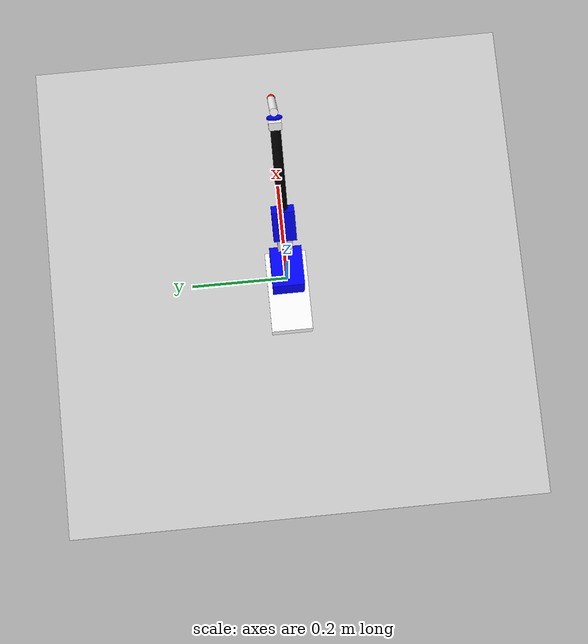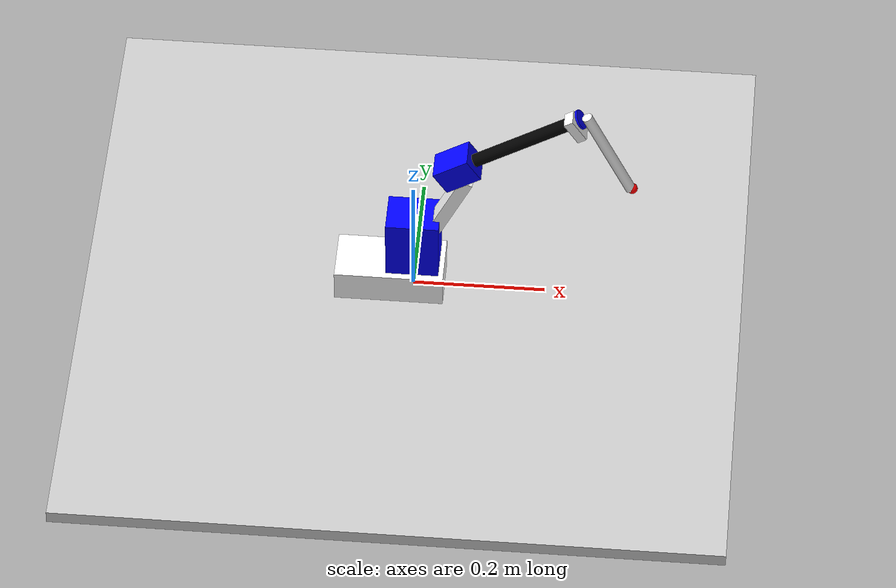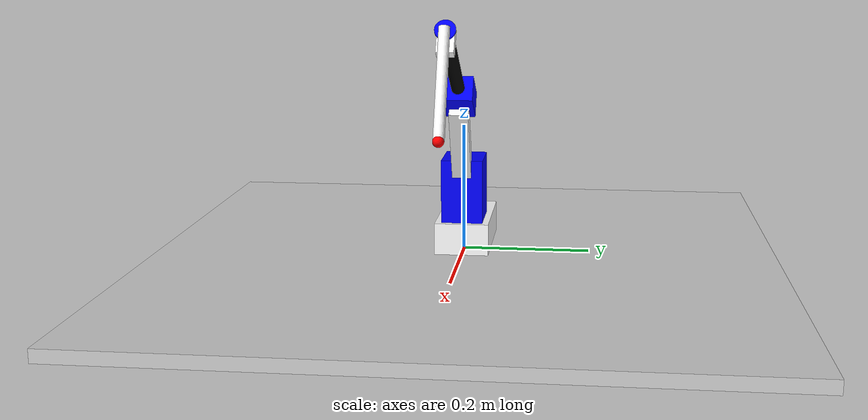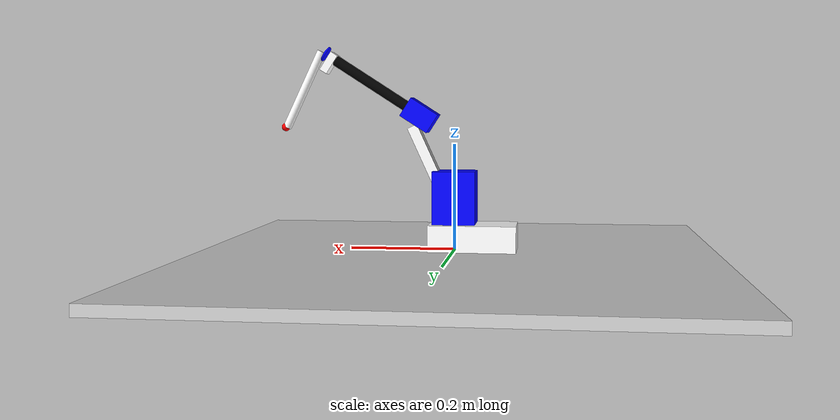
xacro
<?xml version="1.0" ?>
<!-- |    This document was autogenerated by xacro from /home/qiqi/test1/src/marm_description/urdf/arm.xacro | -->
<!-- |    EDITING THIS FILE BY HAND IS NOT RECOMMENDED                                 | -->
<robot name="arm">
    //定义一系列颜色
    <!-- Defining the colors used in this robot -->
    <material name="Black">
        <color rgba="0 0 0 1" />
    </material>
    <material name="White">
        <color rgba="1 1 1 1" />
    </material>
    <material name="Blue">
        <color rgba="0 0 1 1" />
    </material>
    <material name="Red">
        <color rgba="1 0 0 1" />
    </material>
    <!-- ///////////////////////////////////////   world  ////////////////////////////////////////// -->
    <link name="world" />
    <joint name="world_joint" type="fixed">
        <parent link="world" />
        <child link="base_link" />
        <origin rpy="0 0 0" xyz="0 0 0" />
    </joint>
    <!-- ///////////////////////////////////////   bottom_joint   ////////////////////////////////////////// -->
    <joint name="bottom_joint" type="fixed">
        <origin rpy="0 0 0" xyz="0 0 0" />
        <parent link="base_link" />
        <child link="bottom_link" />
    </joint>
    <link name="bottom_link">
        // 可视化
        <visual>
            <origin rpy="0 0 0" xyz=" 0 0 -0.02" />
            <geometry>
                <box size="1 1 0.02" />
            </geometry>
            <material name="silver">
                <color rgba=".8 .8 .8 1" />
            </material>
        </visual>
        // 碰撞属性
        <collision>
            <origin rpy="0 0 0" xyz=" 0 0 -0.02" />
            <geometry>
                <box size="1 1 0.02" />
            </geometry>
        </collision>
        <inertial>
            <origin rpy="0 0 0" xyz="0 0 0" />
            <mass value="500" />
            <inertia ixx="0.1" ixy="0" ixz="0" iyy="0.1" iyz="0" izz="0.1" />
        </inertial>
    </link>
    <!-- /////////////////////////////////////   BASE LINK    ////////////////////////////////////////////// -->
    <link name="base_link">
        <visual>
            <origin rpy="0 0 0" xyz="-0.035 0 0.025" />
            <geometry>
                <box size="0.165 0.085 0.05" />
            </geometry>
            <material name="White" />
        </visual>
        <inertial>
            <origin rpy="0 0 0" xyz="0 0 0.5" />
            <mass value="0.1" />
            <inertia ixx="0.1" ixy="0" ixz="0" iyy="0.1" iyz="0" izz="0.1" />
        </inertial>
        <collision>
            <origin rpy="0 0 0" xyz="-0.035 0 0.025" />
            <geometry>
                <box size="0.165 0.085 0.05" />
            </geometry>
        </collision>
    </link>
    <joint name="joint1" type="revolute">
        <parent link="base_link" />
        <child link="link1" />
        <origin rpy="0 0 0" xyz="0 0 0.05" />
        <axis xyz="0 0 1" />
        <limit effort="100" lower="-1.57" upper="1.57" velocity="100.0" />
        <dynamics damping="0.01" friction="0.0" />
    </joint>
    <!-- /////////////////////////////////////   LINK1  ////////////////////////////////////////////// -->
    <link name="link1">
        <visual>
            <origin rpy="0 0 0" xyz="0 0 0.05" />
            <geometry>
                <box size="0.08 0.065 0.1" />
            </geometry>
            <material name="Blue" />
        </visual>
        <inertial>
            <origin rpy="0 0 0" xyz="0 0 0" />
            <mass value="0.1" />
            <inertia ixx="0.1" ixy="0" ixz="0" iyy="0.1" iyz="0" izz="0.1" />
        </inertial>
        <collision>
            <origin rpy="0 0 0" xyz="0 0 0.05" />
            <geometry>
                <box size="0.08 0.065 0.1" />
            </geometry>
        </collision>
    </link>
    <joint name="joint2" type="revolute">
        <parent link="link1" />
        <child link="link2" />
        <origin rpy="0 2 0" xyz="0.03 0 0.075" />
        <axis xyz="0 -1 0" />
        <limit effort="100" lower="-1.57" upper="1.57" velocity="100.0" />
        <dynamics damping="0.01" friction="-1.0" />
    </joint>
    <!-- ///////////////////////////////////////   LINK2  ////////////////////////////////////////////// -->
    <link name="link2">
        <visual>
            <origin rpy="0 0 0" xyz="-0.06 0 0" />
            <geometry>
                <box size="0.12 0.03 0.02" />
            </geometry>
            <material name="White" />
        </visual>
        <inertial>
            <origin rpy="0 0 0" xyz="0 0 0" />
            <mass value="0.1" />
            <inertia ixx="0.1" ixy="0" ixz="0" iyy="0.1" iyz="0" izz="0.1" />
        </inertial>
        <collision>
            <origin rpy="0 0 0" xyz="-0.06 0 0" />
            <geometry>
                <box size="0.12 0.03 0.02" />
            </geometry>
        </collision>
    </link>
    <joint name="joint2m" type="revolute">
        <parent link="link2" />
        <child link="link2m" />
        <origin rpy="0 0 0" xyz="-0.12 0 0" />
        <axis xyz="0 -1 0" />
        <limit effort="100" lower="-1.57" upper="1.57" velocity="100.0" />
        <mimic joint="joint2" multiplier="-1" />
    </joint>
    <!-- /////////////////////////////////   LINK2m///////////////////////////////////////////////////// -->
    <link name="link2m">
        <interial>
            <origin rpy="0 0 0" xyz="0 0 0" />
            <mass value="0.1" />
            <interia ixx="0.1" ixy="0" ixz="0" iyy="0.1" iyz="0" izz="0.1" />
        </interial>
    </link>
    <joint name="joint3" type="revolute">
        <parent link="link2m" />
        <child link="link3" />
        <origin rpy="0 -1 0" xyz="0 0 0" />
        <axis xyz="0 1 0" />
        <limit effort="100" lower="-1.57" upper="1.57" velocity="100.0" />
        <dynamics damping="0.01" friction="0.0" />
    </joint>
    <!-- /////////////////////////////////   LINK3  ///////////////////////////////////////////////////// -->
    <link name="link3">
        <visual>
            <origin rpy="0 0 0" xyz="-0.025 0 0" />
            <geometry>
                <box size="0.04 0.045 0.06" />
            </geometry>
            <material name="Blue" />
        </visual>
        <inertial>
            <origin rpy="0 0 0" xyz="0.145 0 0" />
            <mass value="0.1" />
            <inertia ixx="0.1" ixy="0" ixz="0" iyy="0.1" iyz="0" izz="0.1" />
        </inertial>
        <collision>
            <origin rpy="0 0 0" xyz="-0.025 0 0" />
            <geometry>
                <box size="0.04 0.045 0.06" />
            </geometry>
        </collision>
    </link>
    <joint name="joint4" type="revolute">
        <parent link="link3" />
        <child link="link4" />
        <origin rpy="0 0 0" xyz="-0.025 0 0" />
        <axis xyz="0 0 1" />
        <limit effort="100" lower="-1.57" upper="1.57" velocity="100.0" />
        <dynamics damping="0.01" friction="0.0" />
    </joint>
    <!-- ///////////////////////////////////   LINK4  //////////////////////////////////////////////// -->
    <link name="link4">
        <visual>
            <origin rpy="0 0 0" xyz="0 0 0.1" />
            <geometry>
                <cylinder length="0.2" radius="0.01" />
            </geometry>
            <material name="Black" />
        </visual>
        <collision>
            <origin rpy="0 0 0" xyz="0 0 0.1" />
            <geometry>
                <cylinder length="0.2" radius="0.01" />
            </geometry>
        </collision>
        <inertial>
            <origin rpy="0 0 0" xyz="0 0 0" />
            <mass value="0.1" />
            <inertia ixx="0.1" ixy="0" ixz="0" iyy="0.1" iyz="0" izz="0.1" />
        </inertial>
    </link>
    <joint name="joint5" type="revolute">
        <parent link="link4" />
        <child link="link5" />
        <axis xyz="0 1 0" />
        <origin rpy="0 0 0" xyz="0 0 0.2" />
        <dynamics damping="0.01" friction="0.0" />
        <limit effort="100" lower="-1.57" upper="1.57" velocity="100.0" />
    </joint>
    <!-- //////////////////////////////////   LINK5  ///////////////////////////////////////////////// -->
    <link name="link5">
        <visual>
            <origin rpy="0 0 0" xyz="0.01 0 0" />
            <geometry>
                <box size="0.04 0.025 0.015" />
            </geometry>
            <material name="White" />
        </visual>
        <collision>
            <origin rpy="0 0 0" xyz="0.01 0 0" />
            <geometry>
                <box size="0.04 0.025 0.015" />
            </geometry>
        </collision>
        <inertial>
            <origin rpy="0 0 0" xyz="0 0 0.5" />
            <mass value="0.1" />
            <inertia ixx="0.1" ixy="0" ixz="0" iyy="0.1" iyz="0" izz="0.1" />
        </inertial>
    </link>
    <joint name="joint6" type="revolute">
        <parent link="link5" />
        <child link="link6" />
        <axis xyz="0 0 1" />
        <origin rpy="0 0 0" xyz="0 0 0.015" />
        <dynamics damping="0.01" friction="0.0" />
        <limit effort="100" lower="-1.57" upper="1.57" velocity="100.0" />
    </joint>
    <!-- ////////////////////////////////   LINK6  ///////////////////////////////////////////////// -->
    <link name="link6">
        <visual>
            <origin rpy="0 0 0" xyz="0 0 0" />
            <geometry>
                <cylinder length="0.003" radius="0.015" />
            </geometry>
            <material name="Blue" />
        </visual>
        <collision>
            <origin rpy="0 0 0" xyz="0 0 0" />
            <geometry>
                <cylinder length="0.003" radius="0.015" />
            </geometry>
        </collision>
        <inertial>
            <origin rpy="0 0 0" xyz="0 0 0.5" />
            <mass value="0.1" />
            <inertia ixx="0.1" ixy="0" ixz="0" iyy="0.1" iyz="0" izz="0.1" />
        </inertial>
    </link>
    <joint name="pen_joint" type="fixed">
        <parent link="link6" />
        <child link="pen" />
    </joint>
    <!-- //////////////////////////////////////   pen   ////////////////////////////////////////////// -->
    <link name="pen">
        <visual>
            <origin rpy="0 1.7 0" xyz="0.08 0 0" />
            <geometry>
                <cylinder length="0.16" radius="0.008" />
            </geometry>
            <material name="White" />
        </visual>
        <inertial>
            <origin rpy="0 1.7 0" xyz="0.08 0 0" />
            <mass value="0.1" />
            <inertia ixx="0.1" ixy="0" ixz="0" iyy="0.1" iyz="0" izz="0.1" />
        </inertial>
        <collision>
            <origin rpy="0 1.7 0" xyz="0.08 0 0" />
            <geometry>
                <cylinder length="0.16" radius="0.008" />
            </geometry>
        </collision>
    </link>
    <!-- //////////////////////////////////////   pen_tip  ////////////////////////////////////////////// -->
    <link name="pen_tip">
        <visual>
            <origin rpy="0 0 0" xyz="0 0 0" />
            <geometry>
                <sphere radius="0.008" />
            </geometry>
            <material name="Red" />
        </visual>
        <collision>
            <origin rpy="0 0 0" xyz="0 0 0" />
            <geometry>
                <sphere radius="0.008" />
            </geometry>
        </collision>
        <inertial>
            <origin rpy="0 0 0" xyz="0 0 0" />
            <mass value="0.1" />
            <inertia ixx="0.1" ixy="0" ixz="0" iyy="0.1" iyz="0" izz="0.1" />
        </inertial>
    </link>
    <joint name="pen_tip_joint" type="fixed">
        <parent link="pen" />
        <child link="pen_tip" />
        <origin rpy="0 0 0" xyz="0.16 0 -0.008" />
    </joint>
    <!-- /////////////////////////////////   Gazebo   ////////////////////////////////////// -->
    <gazebo reference="bottom_link">
        <material>Gazebo/White</material>
        <plugin name="gazebo_ros_control">
            <robotNamespace>/</robotNamespace>
        </plugin>
    </gazebo>
    <gazebo reference="base_link">
        <material>Gazebo/White</material>
    </gazebo>
    <gazebo reference="link1">
        <material>Gazebo/Blue</material>
    </gazebo>
    <gazebo reference="link2">
        <material>Gazebo/White</material>
    </gazebo>
    <gazebo reference="link2m">
        <material>Gazebo/White</material>
    </gazebo>
    <gazebo reference="link3">
        <material>Gazebo/Blue</material>
    </gazebo>
    <gazebo reference="link4">
        <material>Gazebo/Black</material>
    </gazebo>
    <gazebo reference="link5">
        <material>Gazebo/White</material>
    </gazebo>
    <gazebo reference="link6">
        <material>Gazebo/Blue</material>
    </gazebo>
    <gazebo reference="pen">
        <material>Gazebo/White</material>
    </gazebo>
    <gazebo reference="pen_tip_joint">
        <material>Gazebo/Blue</material>
    </gazebo>
    <transmission name="tran1">
        <type>transmission_interface/SimpleTransmission</type>
        <joint name="joint1">
            <hardwareInterface>hardware_interface/PositionJointInterface</hardwareInterface>
        </joint>
        <actuator name="motor1">
            <hardwareInterface>hardware_interface/PositionJointInterface</hardwareInterface>
            <mechanicalReduction>1</mechanicalReduction>
        </actuator>
    </transmission>
    <transmission name="tran2">
        <type>transmission_interface/SimpleTransmission</type>
        <joint name="joint2">
            <hardwareInterface>hardware_interface/PositionJointInterface</hardwareInterface>
        </joint>
        <actuator name="motor2">
            <hardwareInterface>hardware_interface/PositionJointInterface</hardwareInterface>
            <mechanicalReduction>1</mechanicalReduction>
        </actuator>
    </transmission>
    <transmission name="tran2m">
        <type>transmission_interface/SimpleTransmission</type>
        <joint name="joint2m">
            <hardwareInterface>hardware_interface/PositionJointInterface</hardwareInterface>
        </joint>
        <actuator name="motor2m">
            <hardwareInterface>hardware_interface/PositionJointInterface</hardwareInterface>
            <mechanicalReduction>1</mechanicalReduction>
        </actuator>
    </transmission>
    <transmission name="tran3">
        <type>transmission_interface/SimpleTransmission</type>
        <joint name="joint3">
            <hardwareInterface>hardware_interface/PositionJointInterface</hardwareInterface>
        </joint>
        <actuator name="motor3">
            <hardwareInterface>hardware_interface/PositionJointInterface</hardwareInterface>
            <mechanicalReduction>1</mechanicalReduction>
        </actuator>
    </transmission>
    <transmission name="tran4">
        <type>transmission_interface/SimpleTransmission</type>
        <joint name="joint4">
            <hardwareInterface>hardware_interface/PositionJointInterface</hardwareInterface>
        </joint>
        <actuator name="motor4">
            <hardwareInterface>hardware_interface/PositionJointInterface</hardwareInterface>
            <mechanicalReduction>1</mechanicalReduction>
        </actuator>
    </transmission>
    <transmission name="tran5">
        <type>transmission_interface/SimpleTransmission</type>
        <joint name="joint5">
            <hardwareInterface>hardware_interface/PositionJointInterface</hardwareInterface>
        </joint>
        <actuator name="motor5">
            <hardwareInterface>hardware_interface/PositionJointInterface</hardwareInterface>
            <mechanicalReduction>1</mechanicalReduction>
        </actuator>
    </transmission>
    <transmission name="tran6">
        <type>transmission_interface/SimpleTransmission</type>
        <joint name="joint6">
            <hardwareInterface>hardware_interface/PositionJointInterface</hardwareInterface>
        </joint>
        <actuator name="motor6">
            <hardwareInterface>hardware_interface/PositionJointInterface</hardwareInterface>
            <mechanicalReduction>1</mechanicalReduction>
        </actuator>
    </transmission>
    <!-- ros_control plugin -->
    <gazebo>
        <plugin filename="libgazebo_ros_control.so" name="gazebo_ros_control">
            <robotNamespace>/arm</robotNamespace>
        </plugin>
    </gazebo>
</robot>
